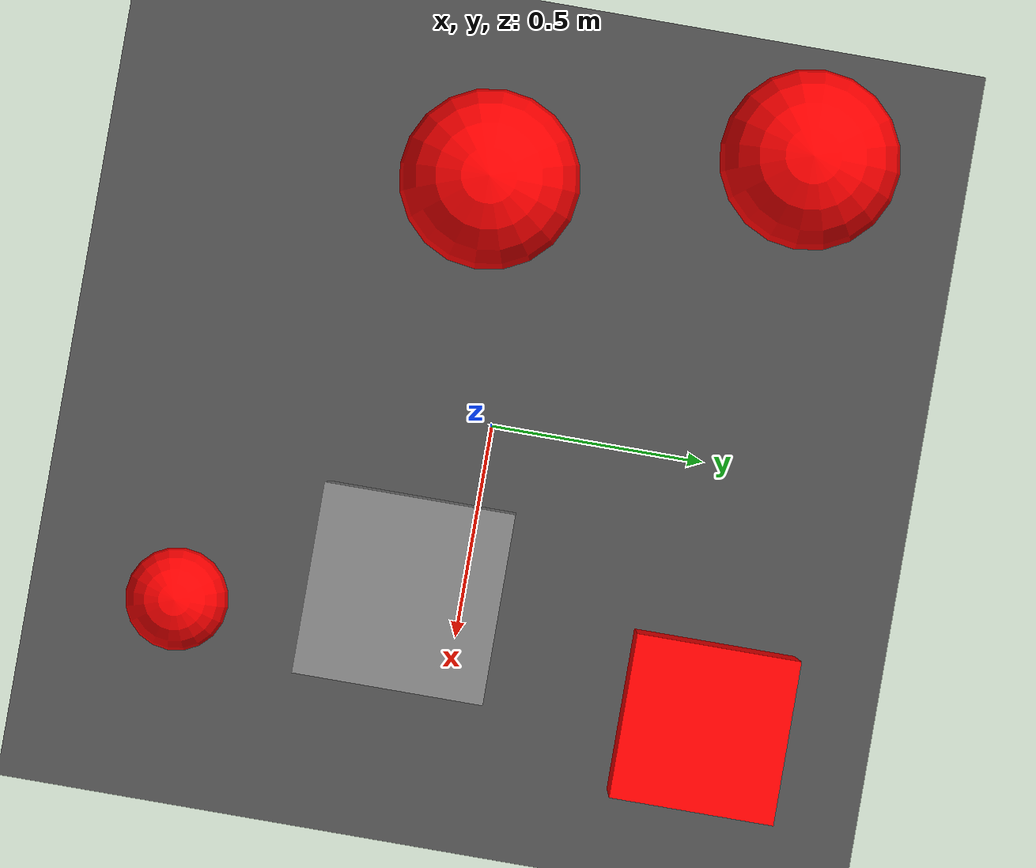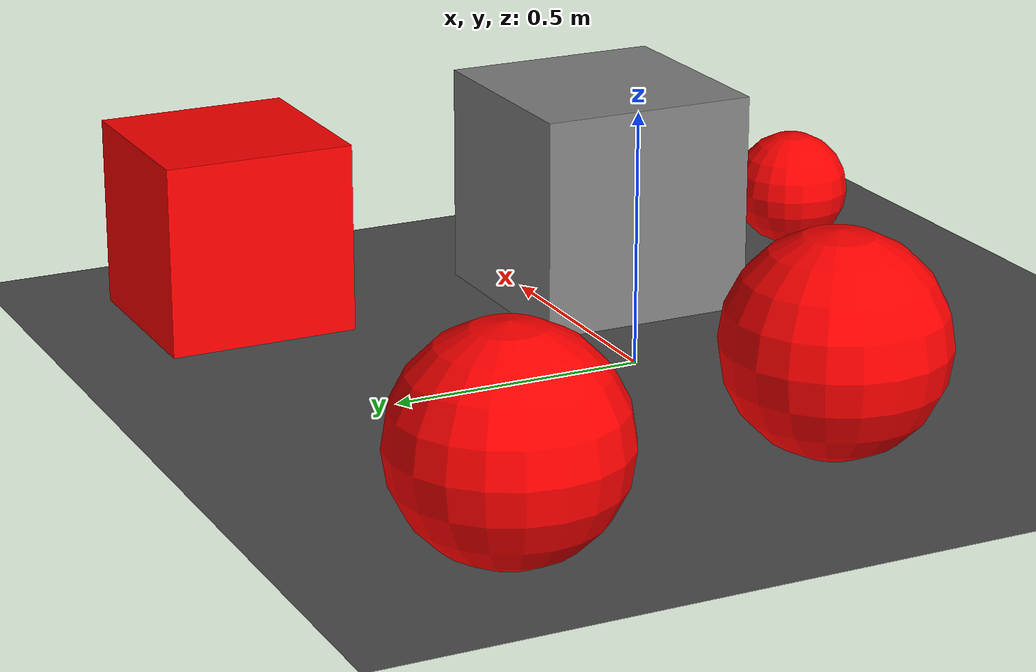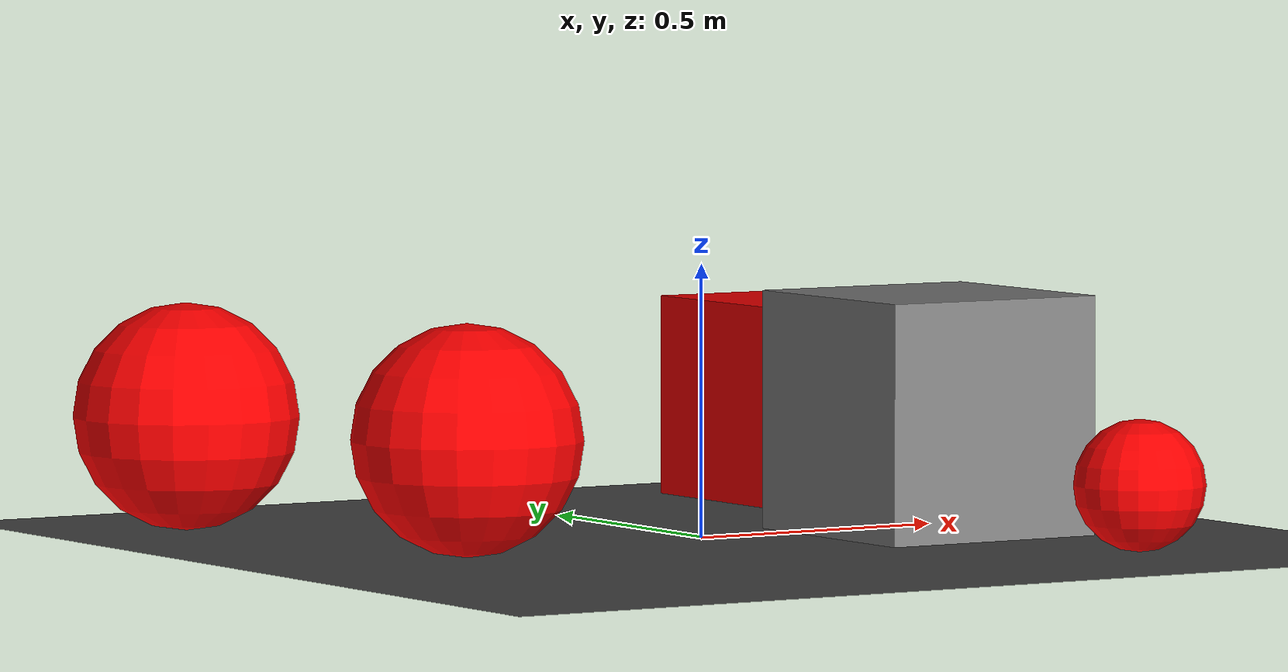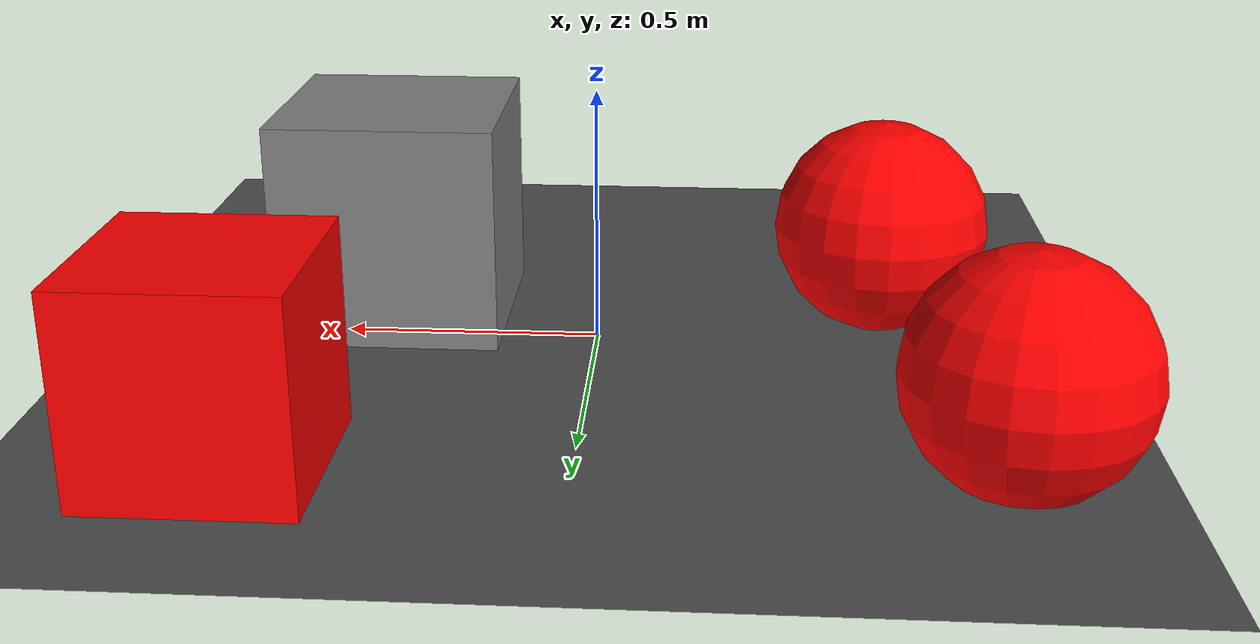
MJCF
<mujoco>
   <asset>
      <texture name="builtin_checker" builtin="checker" type="2d" rgb1="1 1 0" rgb2="0 0 1" width="200" height="200"/>
      <texture name="builtin_gradient" builtin="gradient" rgb1="0 .9 .3" rgb2="1 1 1" width="200" height="200"/>
      <texture name="builtin_flat" builtin="flat" rgb1="1 0 0" rgb2="1 0 0"  width="200" height="200"/>

      <material name="checker_mat" reflectance="0.9" texrepeat="3 3" texture="builtin_checker" texuniform="false" />
      <material name="gradient_mat" reflectance="1" texrepeat="1 1" texture="builtin_gradient" texuniform="true"/>
      <material name="flat_mat" reflectance="1" texrepeat="1 1" texture="builtin_flat" texuniform="true"/>
   </asset>

   <worldbody>
      <light diffuse=".9 .9 .9" pos="0 0 3" dir="0 0 -1"/>
     <geom type="plane" size="1 1 0.1" rgba="0.3 0.3 0.3 1"/>
<body pos="0.52 -0.65 0.12">
<joint type="free"/>
 <geom type="sphere" size="0.12 0.12 0.12" material="flat_mat" />
</body>
<body pos="-0.56 -0.1 0.21">
<joint type="free"/>
 <geom type="sphere" size="0.21 0.21 0.21" material="flat_mat" />
</body>
<body pos="0.6 0.6 0.19">
<joint type="free"/>
 <geom type="box" size="0.19 0.19 0.19" material="flat_mat" />
</body>
<body pos="0.41 -0.13 0.22">
<joint type="free"/>
 <geom type="box" size="0.22 0.22 0.22" material="checker_mat" />
</body>
<body pos="-0.73 0.62 0.21">
<joint type="free"/>
 <geom type="sphere" size="0.21 0.21 0.21" material="flat_mat" />
</body><camera euler="60 0 180" fovy="60" name="camera_a" pos="0 -1.5 1"></camera>   </worldbody>
</mujoco>
